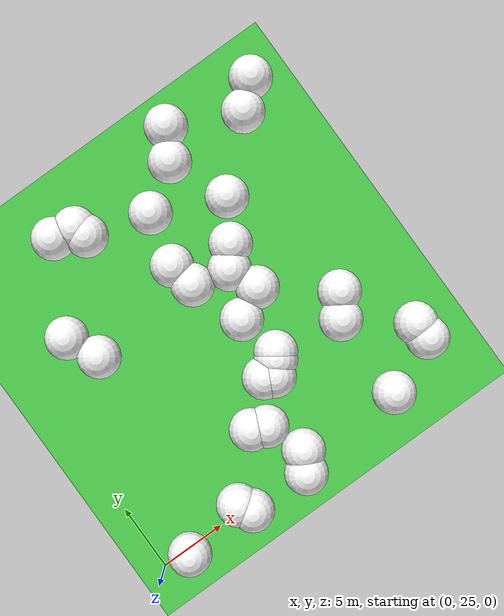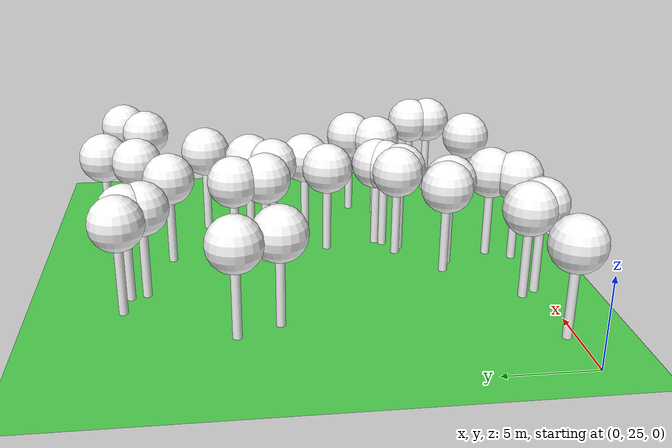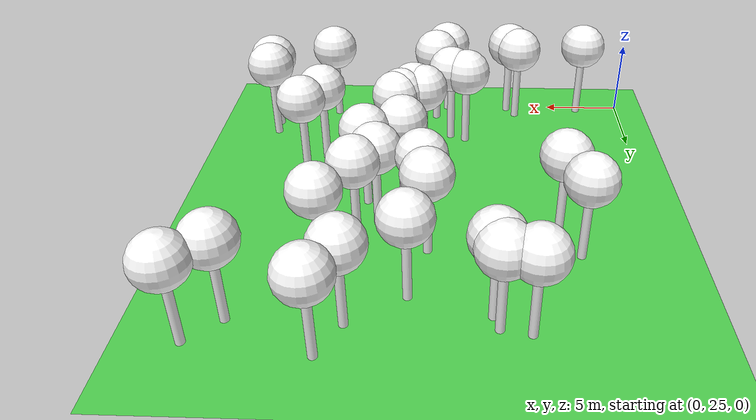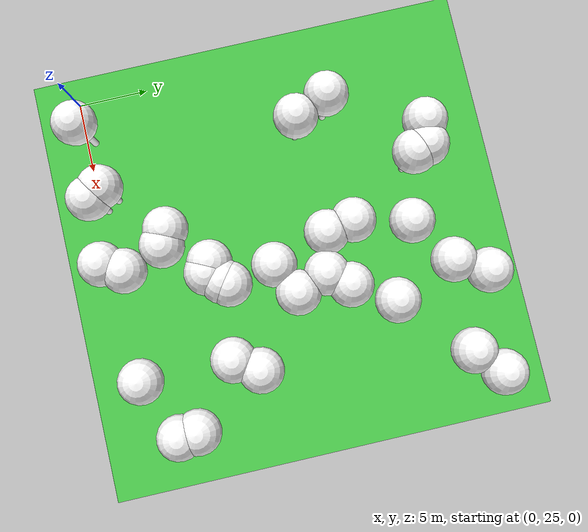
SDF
<sdf version="1.8">
 <world name="forest_world">
  <model name="tree_simple459">
   <static>1</static>
   <link name="link">
    <pose>0 0 0.1 0 -0 0</pose>
    <collision name="collision_trunk">
     <pose>0 0 2 0 -0 0</pose>
     <geometry><cylinder><radius>0.25</radius><length>4</length></cylinder></geometry>
    </collision>
    <collision name="collision_treetop">
     <pose>0 0 5.2 0 -0 0</pose>
     <geometry><sphere><radius>1.5</radius></sphere></geometry>
    </collision>
    <visual name="trunk_459">
     <pose>0 0 2 0 -0 0</pose>
     <geometry><cylinder><radius>0.25</radius><length>4</length></cylinder></geometry>
     <material>
      <ambient>0.5 0.5 0.5 1</ambient>
      <diffuse>1.0 1.0 1.0 1</diffuse>
      <specular>0.0 0.0 0.0 1</specular>
      <pbr>
       <metal>
        <albedo_map>file://textures/tree_simple_trunk.jpg</albedo_map>
        <metalness>0.0</metalness>
        <roughness>0.8</roughness>
       </metal>
      </pbr>
     </material>
    </visual>
    <visual name="treetop_459">
     <pose>0 0 5.2 0 -0 0</pose>
     <geometry><sphere><radius>1.5</radius></sphere></geometry>
     <material>
      <ambient>0.5 0.5 0.5 1</ambient>
      <diffuse>1.0 1.0 1.0 1</diffuse>
      <specular>0.0 0.0 0.0 1</specular>
      <pbr>
       <metal>
        <albedo_map>file://textures/tree_simple_treetop.jpg</albedo_map>
        <metalness>0.0</metalness>
        <roughness>0.9</roughness>
       </metal>
      </pbr>
     </material>
    </visual>
   </link>
   <pose>23.3051385383 47.6025012909 0 0 -0 0</pose>
  </model>
  <model name="tree_simple457">
   <static>1</static>
   <link name="link">
    <pose>0 0 0.1 0 -0 0</pose>
    <collision name="collision_trunk">
     <pose>0 0 2 0 -0 0</pose>
     <geometry><cylinder><radius>0.25</radius><length>4</length></cylinder></geometry>
    </collision>
    <collision name="collision_treetop">
     <pose>0 0 5.2 0 -0 0</pose>
     <geometry><sphere><radius>1.5</radius></sphere></geometry>
    </collision>
    <visual name="trunk_457">
     <pose>0 0 2 0 -0 0</pose>
     <geometry><cylinder><radius>0.25</radius><length>4</length></cylinder></geometry>
     <material>
      <ambient>0.5 0.5 0.5 1</ambient>
      <diffuse>1.0 1.0 1.0 1</diffuse>
      <specular>0.0 0.0 0.0 1</specular>
      <pbr>
       <metal>
        <albedo_map>file://textures/tree_simple_trunk.jpg</albedo_map>
        <metalness>0.0</metalness>
        <roughness>0.8</roughness>
       </metal>
      </pbr>
     </material>
    </visual>
    <visual name="treetop_457">
     <pose>0 0 5.2 0 -0 0</pose>
     <geometry><sphere><radius>1.5</radius></sphere></geometry>
     <material>
      <ambient>0.5 0.5 0.5 1</ambient>
      <diffuse>1.0 1.0 1.0 1</diffuse>
      <specular>0.0 0.0 0.0 1</specular>
      <pbr>
       <metal>
        <albedo_map>file://textures/tree_simple_treetop.jpg</albedo_map>
        <metalness>0.0</metalness>
        <roughness>0.9</roughness>
       </metal>
      </pbr>
     </material>
    </visual>
   </link>
   <pose>13.2865883098 26.7984826025 0 0 -0 0</pose>
  </model>
  <model name="tree_simple452">
   <static>1</static>
   <link name="link">
    <pose>0 0 0.1 0 -0 0</pose>
    <collision name="collision_trunk">
     <pose>0 0 2 0 -0 0</pose>
     <geometry><cylinder><radius>0.25</radius><length>4</length></cylinder></geometry>
    </collision>
    <collision name="collision_treetop">
     <pose>0 0 5.2 0 -0 0</pose>
     <geometry><sphere><radius>1.5</radius></sphere></geometry>
    </collision>
    <visual name="trunk_452">
     <pose>0 0 2 0 -0 0</pose>
     <geometry><cylinder><radius>0.25</radius><length>4</length></cylinder></geometry>
     <material>
      <ambient>0.5 0.5 0.5 1</ambient>
      <diffuse>1.0 1.0 1.0 1</diffuse>
      <specular>0.0 0.0 0.0 1</specular>
      <pbr>
       <metal>
        <albedo_map>file://textures/tree_simple_trunk.jpg</albedo_map>
        <metalness>0.0</metalness>
        <roughness>0.8</roughness>
       </metal>
      </pbr>
     </material>
    </visual>
    <visual name="treetop_452">
     <pose>0 0 5.2 0 -0 0</pose>
     <geometry><sphere><radius>1.5</radius></sphere></geometry>
     <material>
      <ambient>0.5 0.5 0.5 1</ambient>
      <diffuse>1.0 1.0 1.0 1</diffuse>
      <specular>0.0 0.0 0.0 1</specular>
      <pbr>
       <metal>
        <albedo_map>file://textures/tree_simple_treetop.jpg</albedo_map>
        <metalness>0.0</metalness>
        <roughness>0.9</roughness>
       </metal>
      </pbr>
     </material>
    </visual>
   </link>
   <pose>21.4881506157 34.0286005496 0 0 -0 0</pose>
  </model>
  <model name="tree_simple445">
   <static>1</static>
   <link name="link">
    <pose>0 0 0.1 0 -0 0</pose>
    <collision name="collision_trunk">
     <pose>0 0 2 0 -0 0</pose>
     <geometry><cylinder><radius>0.25</radius><length>4</length></cylinder></geometry>
    </collision>
    <collision name="collision_treetop">
     <pose>0 0 5.2 0 -0 0</pose>
     <geometry><sphere><radius>1.5</radius></sphere></geometry>
    </collision>
    <visual name="trunk_445">
     <pose>0 0 2 0 -0 0</pose>
     <geometry><cylinder><radius>0.25</radius><length>4</length></cylinder></geometry>
     <material>
      <ambient>0.5 0.5 0.5 1</ambient>
      <diffuse>1.0 1.0 1.0 1</diffuse>
      <specular>0.0 0.0 0.0 1</specular>
      <pbr>
       <metal>
        <albedo_map>file://textures/tree_simple_trunk.jpg</albedo_map>
        <metalness>0.0</metalness>
        <roughness>0.8</roughness>
       </metal>
      </pbr>
     </material>
    </visual>
    <visual name="treetop_445">
     <pose>0 0 5.2 0 -0 0</pose>
     <geometry><sphere><radius>1.5</radius></sphere></geometry>
     <material>
      <ambient>0.5 0.5 0.5 1</ambient>
      <diffuse>1.0 1.0 1.0 1</diffuse>
      <specular>0.0 0.0 0.0 1</specular>
      <pbr>
       <metal>
        <albedo_map>file://textures/tree_simple_treetop.jpg</albedo_map>
        <metalness>0.0</metalness>
        <roughness>0.9</roughness>
       </metal>
      </pbr>
     </material>
    </visual>
   </link>
   <pose>17.3330924595 47.7477611906 0 0 -0 0</pose>
  </model>
  <model name="tree_simple443">
   <static>1</static>
   <link name="link">
    <pose>0 0 0.1 0 -0 0</pose>
    <collision name="collision_trunk">
     <pose>0 0 2 0 -0 0</pose>
     <geometry><cylinder><radius>0.25</radius><length>4</length></cylinder></geometry>
    </collision>
    <collision name="collision_treetop">
     <pose>0 0 5.2 0 -0 0</pose>
     <geometry><sphere><radius>1.5</radius></sphere></geometry>
    </collision>
    <visual name="trunk_443">
     <pose>0 0 2 0 -0 0</pose>
     <geometry><cylinder><radius>0.25</radius><length>4</length></cylinder></geometry>
     <material>
      <ambient>0.5 0.5 0.5 1</ambient>
      <diffuse>1.0 1.0 1.0 1</diffuse>
      <specular>0.0 0.0 0.0 1</specular>
      <pbr>
       <metal>
        <albedo_map>file://textures/tree_simple_trunk.jpg</albedo_map>
        <metalness>0.0</metalness>
        <roughness>0.8</roughness>
       </metal>
      </pbr>
     </material>
    </visual>
    <visual name="treetop_443">
     <pose>0 0 5.2 0 -0 0</pose>
     <geometry><sphere><radius>1.5</radius></sphere></geometry>
     <material>
      <ambient>0.5 0.5 0.5 1</ambient>
      <diffuse>1.0 1.0 1.0 1</diffuse>
      <specular>0.0 0.0 0.0 1</specular>
      <pbr>
       <metal>
        <albedo_map>file://textures/tree_simple_treetop.jpg</albedo_map>
        <metalness>0.0</metalness>
        <roughness>0.9</roughness>
       </metal>
      </pbr>
     </material>
    </visual>
   </link>
   <pose>20.4518447393 32.4372971603 0 0 -0 0</pose>
  </model>
  <model name="tree_simple435">
   <static>1</static>
   <link name="link">
    <pose>0 0 0.1 0 -0 0</pose>
    <collision name="collision_trunk">
     <pose>0 0 2 0 -0 0</pose>
     <geometry><cylinder><radius>0.25</radius><length>4</length></cylinder></geometry>
    </collision>
    <collision name="collision_treetop">
     <pose>0 0 5.2 0 -0 0</pose>
     <geometry><sphere><radius>1.5</radius></sphere></geometry>
    </collision>
    <visual name="trunk_435">
     <pose>0 0 2 0 -0 0</pose>
     <geometry><cylinder><radius>0.25</radius><length>4</length></cylinder></geometry>
     <material>
      <ambient>0.5 0.5 0.5 1</ambient>
      <diffuse>1.0 1.0 1.0 1</diffuse>
      <specular>0.0 0.0 0.0 1</specular>
      <pbr>
       <metal>
        <albedo_map>file://textures/tree_simple_trunk.jpg</albedo_map>
        <metalness>0.0</metalness>
        <roughness>0.8</roughness>
       </metal>
      </pbr>
     </material>
    </visual>
    <visual name="treetop_435">
     <pose>0 0 5.2 0 -0 0</pose>
     <geometry><sphere><radius>1.5</radius></sphere></geometry>
     <material>
      <ambient>0.5 0.5 0.5 1</ambient>
      <diffuse>1.0 1.0 1.0 1</diffuse>
      <specular>0.0 0.0 0.0 1</specular>
      <pbr>
       <metal>
        <albedo_map>file://textures/tree_simple_treetop.jpg</albedo_map>
        <metalness>0.0</metalness>
        <roughness>0.9</roughness>
       </metal>
      </pbr>
     </material>
    </visual>
   </link>
   <pose>25.0532985597 49.162593115 0 0 -0 0</pose>
  </model>
  <model name="tree_simple419">
   <static>1</static>
   <link name="link">
    <pose>0 0 0.1 0 -0 0</pose>
    <collision name="collision_trunk">
     <pose>0 0 2 0 -0 0</pose>
     <geometry><cylinder><radius>0.25</radius><length>4</length></cylinder></geometry>
    </collision>
    <collision name="collision_treetop">
     <pose>0 0 5.2 0 -0 0</pose>
     <geometry><sphere><radius>1.5</radius></sphere></geometry>
    </collision>
    <visual name="trunk_419">
     <pose>0 0 2 0 -0 0</pose>
     <geometry><cylinder><radius>0.25</radius><length>4</length></cylinder></geometry>
     <material>
      <ambient>0.5 0.5 0.5 1</ambient>
      <diffuse>1.0 1.0 1.0 1</diffuse>
      <specular>0.0 0.0 0.0 1</specular>
      <pbr>
       <metal>
        <albedo_map>file://textures/tree_simple_trunk.jpg</albedo_map>
        <metalness>0.0</metalness>
        <roughness>0.8</roughness>
       </metal>
      </pbr>
     </material>
    </visual>
    <visual name="treetop_419">
     <pose>0 0 5.2 0 -0 0</pose>
     <geometry><sphere><radius>1.5</radius></sphere></geometry>
     <material>
      <ambient>0.5 0.5 0.5 1</ambient>
      <diffuse>1.0 1.0 1.0 1</diffuse>
      <specular>0.0 0.0 0.0 1</specular>
      <pbr>
       <metal>
        <albedo_map>file://textures/tree_simple_treetop.jpg</albedo_map>
        <metalness>0.0</metalness>
        <roughness>0.9</roughness>
       </metal>
      </pbr>
     </material>
    </visual>
   </link>
   <pose>15.0608261067 36.3391301174 0 0 -0 0</pose>
  </model>
  <model name="tree_simple413">
   <static>1</static>
   <link name="link">
    <pose>0 0 0.1 0 -0 0</pose>
    <collision name="collision_trunk">
     <pose>0 0 2 0 -0 0</pose>
     <geometry><cylinder><radius>0.25</radius><length>4</length></cylinder></geometry>
    </collision>
    <collision name="collision_treetop">
     <pose>0 0 5.2 0 -0 0</pose>
     <geometry><sphere><radius>1.5</radius></sphere></geometry>
    </collision>
    <visual name="trunk_413">
     <pose>0 0 2 0 -0 0</pose>
     <geometry><cylinder><radius>0.25</radius><length>4</length></cylinder></geometry>
     <material>
      <ambient>0.5 0.5 0.5 1</ambient>
      <diffuse>1.0 1.0 1.0 1</diffuse>
      <specular>0.0 0.0 0.0 1</specular>
      <pbr>
       <metal>
        <albedo_map>file://textures/tree_simple_trunk.jpg</albedo_map>
        <metalness>0.0</metalness>
        <roughness>0.8</roughness>
       </metal>
      </pbr>
     </material>
    </visual>
    <visual name="treetop_413">
     <pose>0 0 5.2 0 -0 0</pose>
     <geometry><sphere><radius>1.5</radius></sphere></geometry>
     <material>
      <ambient>0.5 0.5 0.5 1</ambient>
      <diffuse>1.0 1.0 1.0 1</diffuse>
      <specular>0.0 0.0 0.0 1</specular>
      <pbr>
       <metal>
        <albedo_map>file://textures/tree_simple_treetop.jpg</albedo_map>
        <metalness>0.0</metalness>
        <roughness>0.9</roughness>
       </metal>
      </pbr>
     </material>
    </visual>
   </link>
   <pose>4.79772995732 42.1907919742 0 0 -0 0</pose>
  </model>
  <model name="tree_simple405">
   <static>1</static>
   <link name="link">
    <pose>0 0 0.1 0 -0 0</pose>
    <collision name="collision_trunk">
     <pose>0 0 2 0 -0 0</pose>
     <geometry><cylinder><radius>0.25</radius><length>4</length></cylinder></geometry>
    </collision>
    <collision name="collision_treetop">
     <pose>0 0 5.2 0 -0 0</pose>
     <geometry><sphere><radius>1.5</radius></sphere></geometry>
    </collision>
    <visual name="trunk_405">
     <pose>0 0 2 0 -0 0</pose>
     <geometry><cylinder><radius>0.25</radius><length>4</length></cylinder></geometry>
     <material>
      <ambient>0.5 0.5 0.5 1</ambient>
      <diffuse>1.0 1.0 1.0 1</diffuse>
      <specular>0.0 0.0 0.0 1</specular>
      <pbr>
       <metal>
        <albedo_map>file://textures/tree_simple_trunk.jpg</albedo_map>
        <metalness>0.0</metalness>
        <roughness>0.8</roughness>
       </metal>
      </pbr>
     </material>
    </visual>
    <visual name="treetop_405">
     <pose>0 0 5.2 0 -0 0</pose>
     <geometry><sphere><radius>1.5</radius></sphere></geometry>
     <material>
      <ambient>0.5 0.5 0.5 1</ambient>
      <diffuse>1.0 1.0 1.0 1</diffuse>
      <specular>0.0 0.0 0.0 1</specular>
      <pbr>
       <metal>
        <albedo_map>file://textures/tree_simple_treetop.jpg</albedo_map>
        <metalness>0.0</metalness>
        <roughness>0.9</roughness>
       </metal>
      </pbr>
     </material>
    </visual>
   </link>
   <pose>13.9640568795 32.2793272532 0 0 -0 0</pose>
  </model>
  <model name="tree_simple401">
   <static>1</static>
   <link name="link">
    <pose>0 0 0.1 0 -0 0</pose>
    <collision name="collision_trunk">
     <pose>0 0 2 0 -0 0</pose>
     <geometry><cylinder><radius>0.25</radius><length>4</length></cylinder></geometry>
    </collision>
    <collision name="collision_treetop">
     <pose>0 0 5.2 0 -0 0</pose>
     <geometry><sphere><radius>1.5</radius></sphere></geometry>
    </collision>
    <visual name="trunk_401">
     <pose>0 0 2 0 -0 0</pose>
     <geometry><cylinder><radius>0.25</radius><length>4</length></cylinder></geometry>
     <material>
      <ambient>0.5 0.5 0.5 1</ambient>
      <diffuse>1.0 1.0 1.0 1</diffuse>
      <specular>0.0 0.0 0.0 1</specular>
      <pbr>
       <metal>
        <albedo_map>file://textures/tree_simple_trunk.jpg</albedo_map>
        <metalness>0.0</metalness>
        <roughness>0.8</roughness>
       </metal>
      </pbr>
     </material>
    </visual>
    <visual name="treetop_401">
     <pose>0 0 5.2 0 -0 0</pose>
     <geometry><sphere><radius>1.5</radius></sphere></geometry>
     <material>
      <ambient>0.5 0.5 0.5 1</ambient>
      <diffuse>1.0 1.0 1.0 1</diffuse>
      <specular>0.0 0.0 0.0 1</specular>
      <pbr>
       <metal>
        <albedo_map>file://textures/tree_simple_treetop.jpg</albedo_map>
        <metalness>0.0</metalness>
        <roughness>0.9</roughness>
       </metal>
      </pbr>
     </material>
    </visual>
   </link>
   <pose>18.5119614972 49.8300347258 0 0 -0 0</pose>
  </model>
  <model name="tree_simple381">
   <static>1</static>
   <link name="link">
    <pose>0 0 0.1 0 -0 0</pose>
    <collision name="collision_trunk">
     <pose>0 0 2 0 -0 0</pose>
     <geometry><cylinder><radius>0.25</radius><length>4</length></cylinder></geometry>
    </collision>
    <collision name="collision_treetop">
     <pose>0 0 5.2 0 -0 0</pose>
     <geometry><sphere><radius>1.5</radius></sphere></geometry>
    </collision>
    <visual name="trunk_381">
     <pose>0 0 2 0 -0 0</pose>
     <geometry><cylinder><radius>0.25</radius><length>4</length></cylinder></geometry>
     <material>
      <ambient>0.5 0.5 0.5 1</ambient>
      <diffuse>1.0 1.0 1.0 1</diffuse>
      <specular>0.0 0.0 0.0 1</specular>
      <pbr>
       <metal>
        <albedo_map>file://textures/tree_simple_trunk.jpg</albedo_map>
        <metalness>0.0</metalness>
        <roughness>0.8</roughness>
       </metal>
      </pbr>
     </material>
    </visual>
    <visual name="treetop_381">
     <pose>0 0 5.2 0 -0 0</pose>
     <geometry><sphere><radius>1.5</radius></sphere></geometry>
     <material>
      <ambient>0.5 0.5 0.5 1</ambient>
      <diffuse>1.0 1.0 1.0 1</diffuse>
      <specular>0.0 0.0 0.0 1</specular>
      <pbr>
       <metal>
        <albedo_map>file://textures/tree_simple_treetop.jpg</albedo_map>
        <metalness>0.0</metalness>
        <roughness>0.9</roughness>
       </metal>
      </pbr>
     </material>
    </visual>
   </link>
   <pose>14.598493672 31.9609585056 0 0 -0 0</pose>
  </model>
  <model name="tree_simple372">
   <static>1</static>
   <link name="link">
    <pose>0 0 0.1 0 -0 0</pose>
    <collision name="collision_trunk">
     <pose>0 0 2 0 -0 0</pose>
     <geometry><cylinder><radius>0.25</radius><length>4</length></cylinder></geometry>
    </collision>
    <collision name="collision_treetop">
     <pose>0 0 5.2 0 -0 0</pose>
     <geometry><sphere><radius>1.5</radius></sphere></geometry>
    </collision>
    <visual name="trunk_372">
     <pose>0 0 2 0 -0 0</pose>
     <geometry><cylinder><radius>0.25</radius><length>4</length></cylinder></geometry>
     <material>
      <ambient>0.5 0.5 0.5 1</ambient>
      <diffuse>1.0 1.0 1.0 1</diffuse>
      <specular>0.0 0.0 0.0 1</specular>
      <pbr>
       <metal>
        <albedo_map>file://textures/tree_simple_trunk.jpg</albedo_map>
        <metalness>0.0</metalness>
        <roughness>0.8</roughness>
       </metal>
      </pbr>
     </material>
    </visual>
    <visual name="treetop_372">
     <pose>0 0 5.2 0 -0 0</pose>
     <geometry><sphere><radius>1.5</radius></sphere></geometry>
     <material>
      <ambient>0.5 0.5 0.5 1</ambient>
      <diffuse>1.0 1.0 1.0 1</diffuse>
      <specular>0.0 0.0 0.0 1</specular>
      <pbr>
       <metal>
        <albedo_map>file://textures/tree_simple_treetop.jpg</albedo_map>
        <metalness>0.0</metalness>
        <roughness>0.9</roughness>
       </metal>
      </pbr>
     </material>
    </visual>
   </link>
   <pose>19.0807104519 43.6051965294 0 0 -0 0</pose>
  </model>
  <model name="tree_simple367">
   <static>1</static>
   <link name="link">
    <pose>0 0 0.1 0 -0 0</pose>
    <collision name="collision_trunk">
     <pose>0 0 2 0 -0 0</pose>
     <geometry><cylinder><radius>0.25</radius><length>4</length></cylinder></geometry>
    </collision>
    <collision name="collision_treetop">
     <pose>0 0 5.2 0 -0 0</pose>
     <geometry><sphere><radius>1.5</radius></sphere></geometry>
    </collision>
    <visual name="trunk_367">
     <pose>0 0 2 0 -0 0</pose>
     <geometry><cylinder><radius>0.25</radius><length>4</length></cylinder></geometry>
     <material>
      <ambient>0.5 0.5 0.5 1</ambient>
      <diffuse>1.0 1.0 1.0 1</diffuse>
      <specular>0.0 0.0 0.0 1</specular>
      <pbr>
       <metal>
        <albedo_map>file://textures/tree_simple_trunk.jpg</albedo_map>
        <metalness>0.0</metalness>
        <roughness>0.8</roughness>
       </metal>
      </pbr>
     </material>
    </visual>
    <visual name="treetop_367">
     <pose>0 0 5.2 0 -0 0</pose>
     <geometry><sphere><radius>1.5</radius></sphere></geometry>
     <material>
      <ambient>0.5 0.5 0.5 1</ambient>
      <diffuse>1.0 1.0 1.0 1</diffuse>
      <specular>0.0 0.0 0.0 1</specular>
      <pbr>
       <metal>
        <albedo_map>file://textures/tree_simple_treetop.jpg</albedo_map>
        <metalness>0.0</metalness>
        <roughness>0.9</roughness>
       </metal>
      </pbr>
     </material>
    </visual>
   </link>
   <pose>14.2659299001 45.7179827091 0 0 -0 0</pose>
  </model>
  <model name="tree_simple365">
   <static>1</static>
   <link name="link">
    <pose>0 0 0.1 0 -0 0</pose>
    <collision name="collision_trunk">
     <pose>0 0 2 0 -0 0</pose>
     <geometry><cylinder><radius>0.25</radius><length>4</length></cylinder></geometry>
    </collision>
    <collision name="collision_treetop">
     <pose>0 0 5.2 0 -0 0</pose>
     <geometry><sphere><radius>1.5</radius></sphere></geometry>
    </collision>
    <visual name="trunk_365">
     <pose>0 0 2 0 -0 0</pose>
     <geometry><cylinder><radius>0.25</radius><length>4</length></cylinder></geometry>
     <material>
      <ambient>0.5 0.5 0.5 1</ambient>
      <diffuse>1.0 1.0 1.0 1</diffuse>
      <specular>0.0 0.0 0.0 1</specular>
      <pbr>
       <metal>
        <albedo_map>file://textures/tree_simple_trunk.jpg</albedo_map>
        <metalness>0.0</metalness>
        <roughness>0.8</roughness>
       </metal>
      </pbr>
     </material>
    </visual>
    <visual name="treetop_365">
     <pose>0 0 5.2 0 -0 0</pose>
     <geometry><sphere><radius>1.5</radius></sphere></geometry>
     <material>
      <ambient>0.5 0.5 0.5 1</ambient>
      <diffuse>1.0 1.0 1.0 1</diffuse>
      <specular>0.0 0.0 0.0 1</specular>
      <pbr>
       <metal>
        <albedo_map>file://textures/tree_simple_treetop.jpg</albedo_map>
        <metalness>0.0</metalness>
        <roughness>0.9</roughness>
       </metal>
      </pbr>
     </material>
    </visual>
   </link>
   <pose>7.96669325113 48.1339153876 0 0 -0 0</pose>
  </model>
  <model name="tree_simple340">
   <static>1</static>
   <link name="link">
    <pose>0 0 0.1 0 -0 0</pose>
    <collision name="collision_trunk">
     <pose>0 0 2 0 -0 0</pose>
     <geometry><cylinder><radius>0.25</radius><length>4</length></cylinder></geometry>
    </collision>
    <collision name="collision_treetop">
     <pose>0 0 5.2 0 -0 0</pose>
     <geometry><sphere><radius>1.5</radius></sphere></geometry>
    </collision>
    <visual name="trunk_340">
     <pose>0 0 2 0 -0 0</pose>
     <geometry><cylinder><radius>0.25</radius><length>4</length></cylinder></geometry>
     <material>
      <ambient>0.5 0.5 0.5 1</ambient>
      <diffuse>1.0 1.0 1.0 1</diffuse>
      <specular>0.0 0.0 0.0 1</specular>
      <pbr>
       <metal>
        <albedo_map>file://textures/tree_simple_trunk.jpg</albedo_map>
        <metalness>0.0</metalness>
        <roughness>0.8</roughness>
       </metal>
      </pbr>
     </material>
    </visual>
    <visual name="treetop_340">
     <pose>0 0 5.2 0 -0 0</pose>
     <geometry><sphere><radius>1.5</radius></sphere></geometry>
     <material>
      <ambient>0.5 0.5 0.5 1</ambient>
      <diffuse>1.0 1.0 1.0 1</diffuse>
      <specular>0.0 0.0 0.0 1</specular>
      <pbr>
       <metal>
        <albedo_map>file://textures/tree_simple_treetop.jpg</albedo_map>
        <metalness>0.0</metalness>
        <roughness>0.9</roughness>
       </metal>
      </pbr>
     </material>
    </visual>
   </link>
   <pose>15.6359324045 33.2415832038 0 0 -0 0</pose>
  </model>
  <model name="tree_simple339">
   <static>1</static>
   <link name="link">
    <pose>0 0 0.1 0 -0 0</pose>
    <collision name="collision_trunk">
     <pose>0 0 2 0 -0 0</pose>
     <geometry><cylinder><radius>0.25</radius><length>4</length></cylinder></geometry>
    </collision>
    <collision name="collision_treetop">
     <pose>0 0 5.2 0 -0 0</pose>
     <geometry><sphere><radius>1.5</radius></sphere></geometry>
    </collision>
    <visual name="trunk_339">
     <pose>0 0 2 0 -0 0</pose>
     <geometry><cylinder><radius>0.25</radius><length>4</length></cylinder></geometry>
     <material>
      <ambient>0.5 0.5 0.5 1</ambient>
      <diffuse>1.0 1.0 1.0 1</diffuse>
      <specular>0.0 0.0 0.0 1</specular>
      <pbr>
       <metal>
        <albedo_map>file://textures/tree_simple_trunk.jpg</albedo_map>
        <metalness>0.0</metalness>
        <roughness>0.8</roughness>
       </metal>
      </pbr>
     </material>
    </visual>
    <visual name="treetop_339">
     <pose>0 0 5.2 0 -0 0</pose>
     <geometry><sphere><radius>1.5</radius></sphere></geometry>
     <material>
      <ambient>0.5 0.5 0.5 1</ambient>
      <diffuse>1.0 1.0 1.0 1</diffuse>
      <specular>0.0 0.0 0.0 1</specular>
      <pbr>
       <metal>
        <albedo_map>file://textures/tree_simple_treetop.jpg</albedo_map>
        <metalness>0.0</metalness>
        <roughness>0.9</roughness>
       </metal>
      </pbr>
     </material>
    </visual>
   </link>
   <pose>8.14193712957 25.5166560065 0 0 -0 0</pose>
  </model>
  <model name="tree_simple325">
   <static>1</static>
   <link name="link">
    <pose>0 0 0.1 0 -0 0</pose>
    <collision name="collision_trunk">
     <pose>0 0 2 0 -0 0</pose>
     <geometry><cylinder><radius>0.25</radius><length>4</length></cylinder></geometry>
    </collision>
    <collision name="collision_treetop">
     <pose>0 0 5.2 0 -0 0</pose>
     <geometry><sphere><radius>1.5</radius></sphere></geometry>
    </collision>
    <visual name="trunk_325">
     <pose>0 0 2 0 -0 0</pose>
     <geometry><cylinder><radius>0.25</radius><length>4</length></cylinder></geometry>
     <material>
      <ambient>0.5 0.5 0.5 1</ambient>
      <diffuse>1.0 1.0 1.0 1</diffuse>
      <specular>0.0 0.0 0.0 1</specular>
      <pbr>
       <metal>
        <albedo_map>file://textures/tree_simple_trunk.jpg</albedo_map>
        <metalness>0.0</metalness>
        <roughness>0.8</roughness>
       </metal>
      </pbr>
     </material>
    </visual>
    <visual name="treetop_325">
     <pose>0 0 5.2 0 -0 0</pose>
     <geometry><sphere><radius>1.5</radius></sphere></geometry>
     <material>
      <ambient>0.5 0.5 0.5 1</ambient>
      <diffuse>1.0 1.0 1.0 1</diffuse>
      <specular>0.0 0.0 0.0 1</specular>
      <pbr>
       <metal>
        <albedo_map>file://textures/tree_simple_treetop.jpg</albedo_map>
        <metalness>0.0</metalness>
        <roughness>0.9</roughness>
       </metal>
      </pbr>
     </material>
    </visual>
   </link>
   <pose>16.3512762839 39.5353955834 0 0 -0 0</pose>
  </model>
  <model name="tree_simple320">
   <static>1</static>
   <link name="link">
    <pose>0 0 0.1 0 -0 0</pose>
    <collision name="collision_trunk">
     <pose>0 0 2 0 -0 0</pose>
     <geometry><cylinder><radius>0.25</radius><length>4</length></cylinder></geometry>
    </collision>
    <collision name="collision_treetop">
     <pose>0 0 5.2 0 -0 0</pose>
     <geometry><sphere><radius>1.5</radius></sphere></geometry>
    </collision>
    <visual name="trunk_320">
     <pose>0 0 2 0 -0 0</pose>
     <geometry><cylinder><radius>0.25</radius><length>4</length></cylinder></geometry>
     <material>
      <ambient>0.5 0.5 0.5 1</ambient>
      <diffuse>1.0 1.0 1.0 1</diffuse>
      <specular>0.0 0.0 0.0 1</specular>
      <pbr>
       <metal>
        <albedo_map>file://textures/tree_simple_trunk.jpg</albedo_map>
        <metalness>0.0</metalness>
        <roughness>0.8</roughness>
       </metal>
      </pbr>
     </material>
    </visual>
    <visual name="treetop_320">
     <pose>0 0 5.2 0 -0 0</pose>
     <geometry><sphere><radius>1.5</radius></sphere></geometry>
     <material>
      <ambient>0.5 0.5 0.5 1</ambient>
      <diffuse>1.0 1.0 1.0 1</diffuse>
      <specular>0.0 0.0 0.0 1</specular>
      <pbr>
       <metal>
        <albedo_map>file://textures/tree_simple_treetop.jpg</albedo_map>
        <metalness>0.0</metalness>
        <roughness>0.9</roughness>
       </metal>
      </pbr>
     </material>
    </visual>
   </link>
   <pose>17.4267796311 40.9028236297 0 0 -0 0</pose>
  </model>
  <model name="tree_simple295">
   <static>1</static>
   <link name="link">
    <pose>0 0 0.1 0 -0 0</pose>
    <collision name="collision_trunk">
     <pose>0 0 2 0 -0 0</pose>
     <geometry><cylinder><radius>0.25</radius><length>4</length></cylinder></geometry>
    </collision>
    <collision name="collision_treetop">
     <pose>0 0 5.2 0 -0 0</pose>
     <geometry><sphere><radius>1.5</radius></sphere></geometry>
    </collision>
    <visual name="trunk_295">
     <pose>0 0 2 0 -0 0</pose>
     <geometry><cylinder><radius>0.25</radius><length>4</length></cylinder></geometry>
     <material>
      <ambient>0.5 0.5 0.5 1</ambient>
      <diffuse>1.0 1.0 1.0 1</diffuse>
      <specular>0.0 0.0 0.0 1</specular>
      <pbr>
       <metal>
        <albedo_map>file://textures/tree_simple_trunk.jpg</albedo_map>
        <metalness>0.0</metalness>
        <roughness>0.8</roughness>
       </metal>
      </pbr>
     </material>
    </visual>
    <visual name="treetop_295">
     <pose>0 0 5.2 0 -0 0</pose>
     <geometry><sphere><radius>1.5</radius></sphere></geometry>
     <material>
      <ambient>0.5 0.5 0.5 1</ambient>
      <diffuse>1.0 1.0 1.0 1</diffuse>
      <specular>0.0 0.0 0.0 1</specular>
      <pbr>
       <metal>
        <albedo_map>file://textures/tree_simple_treetop.jpg</albedo_map>
        <metalness>0.0</metalness>
        <roughness>0.9</roughness>
       </metal>
      </pbr>
     </material>
    </visual>
   </link>
   <pose>24.4545500201 28.0657933919 0 0 -0 0</pose>
  </model>
  <model name="tree_simple287">
   <static>1</static>
   <link name="link">
    <pose>0 0 0.1 0 -0 0</pose>
    <collision name="collision_trunk">
     <pose>0 0 2 0 -0 0</pose>
     <geometry><cylinder><radius>0.25</radius><length>4</length></cylinder></geometry>
    </collision>
    <collision name="collision_treetop">
     <pose>0 0 5.2 0 -0 0</pose>
     <geometry><sphere><radius>1.5</radius></sphere></geometry>
    </collision>
    <visual name="trunk_287">
     <pose>0 0 2 0 -0 0</pose>
     <geometry><cylinder><radius>0.25</radius><length>4</length></cylinder></geometry>
     <material>
      <ambient>0.5 0.5 0.5 1</ambient>
      <diffuse>1.0 1.0 1.0 1</diffuse>
      <specular>0.0 0.0 0.0 1</specular>
      <pbr>
       <metal>
        <albedo_map>file://textures/tree_simple_trunk.jpg</albedo_map>
        <metalness>0.0</metalness>
        <roughness>0.8</roughness>
       </metal>
      </pbr>
     </material>
    </visual>
    <visual name="treetop_287">
     <pose>0 0 5.2 0 -0 0</pose>
     <geometry><sphere><radius>1.5</radius></sphere></geometry>
     <material>
      <ambient>0.5 0.5 0.5 1</ambient>
      <diffuse>1.0 1.0 1.0 1</diffuse>
      <specular>0.0 0.0 0.0 1</specular>
      <pbr>
       <metal>
        <albedo_map>file://textures/tree_simple_treetop.jpg</albedo_map>
        <metalness>0.0</metalness>
        <roughness>0.9</roughness>
       </metal>
      </pbr>
     </material>
    </visual>
   </link>
   <pose>5.81960290033 39.8953620518 0 0 -0 0</pose>
  </model>
  <model name="tree_simple275">
   <static>1</static>
   <link name="link">
    <pose>0 0 0.1 0 -0 0</pose>
    <collision name="collision_trunk">
     <pose>0 0 2 0 -0 0</pose>
     <geometry><cylinder><radius>0.25</radius><length>4</length></cylinder></geometry>
    </collision>
    <collision name="collision_treetop">
     <pose>0 0 5.2 0 -0 0</pose>
     <geometry><sphere><radius>1.5</radius></sphere></geometry>
    </collision>
    <visual name="trunk_275">
     <pose>0 0 2 0 -0 0</pose>
     <geometry><cylinder><radius>0.25</radius><length>4</length></cylinder></geometry>
     <material>
      <ambient>0.5 0.5 0.5 1</ambient>
      <diffuse>1.0 1.0 1.0 1</diffuse>
      <specular>0.0 0.0 0.0 1</specular>
      <pbr>
       <metal>
        <albedo_map>file://textures/tree_simple_trunk.jpg</albedo_map>
        <metalness>0.0</metalness>
        <roughness>0.8</roughness>
       </metal>
      </pbr>
     </material>
    </visual>
    <visual name="treetop_275">
     <pose>0 0 5.2 0 -0 0</pose>
     <geometry><sphere><radius>1.5</radius></sphere></geometry>
     <material>
      <ambient>0.5 0.5 0.5 1</ambient>
      <diffuse>1.0 1.0 1.0 1</diffuse>
      <specular>0.0 0.0 0.0 1</specular>
      <pbr>
       <metal>
        <albedo_map>file://textures/tree_simple_treetop.jpg</albedo_map>
        <metalness>0.0</metalness>
        <roughness>0.9</roughness>
       </metal>
      </pbr>
     </material>
    </visual>
   </link>
   <pose>11.2194181464 29.9629539421 0 0 -0 0</pose>
  </model>
  <model name="tree_simple260">
   <static>1</static>
   <link name="link">
    <pose>0 0 0.1 0 -0 0</pose>
    <collision name="collision_trunk">
     <pose>0 0 2 0 -0 0</pose>
     <geometry><cylinder><radius>0.25</radius><length>4</length></cylinder></geometry>
    </collision>
    <collision name="collision_treetop">
     <pose>0 0 5.2 0 -0 0</pose>
     <geometry><sphere><radius>1.5</radius></sphere></geometry>
    </collision>
    <visual name="trunk_260">
     <pose>0 0 2 0 -0 0</pose>
     <geometry><cylinder><radius>0.25</radius><length>4</length></cylinder></geometry>
     <material>
      <ambient>0.5 0.5 0.5 1</ambient>
      <diffuse>1.0 1.0 1.0 1</diffuse>
      <specular>0.0 0.0 0.0 1</specular>
      <pbr>
       <metal>
        <albedo_map>file://textures/tree_simple_trunk.jpg</albedo_map>
        <metalness>0.0</metalness>
        <roughness>0.8</roughness>
       </metal>
      </pbr>
     </material>
    </visual>
    <visual name="treetop_260">
     <pose>0 0 5.2 0 -0 0</pose>
     <geometry><sphere><radius>1.5</radius></sphere></geometry>
     <material>
      <ambient>0.5 0.5 0.5 1</ambient>
      <diffuse>1.0 1.0 1.0 1</diffuse>
      <specular>0.0 0.0 0.0 1</specular>
      <pbr>
       <metal>
        <albedo_map>file://textures/tree_simple_treetop.jpg</albedo_map>
        <metalness>0.0</metalness>
        <roughness>0.9</roughness>
       </metal>
      </pbr>
     </material>
    </visual>
   </link>
   <pose>20.4747246255 26.3739745209 0 0 -0 0</pose>
  </model>
  <model name="tree_simple258">
   <static>1</static>
   <link name="link">
    <pose>0 0 0.1 0 -0 0</pose>
    <collision name="collision_trunk">
     <pose>0 0 2 0 -0 0</pose>
     <geometry><cylinder><radius>0.25</radius><length>4</length></cylinder></geometry>
    </collision>
    <collision name="collision_treetop">
     <pose>0 0 5.2 0 -0 0</pose>
     <geometry><sphere><radius>1.5</radius></sphere></geometry>
    </collision>
    <visual name="trunk_258">
     <pose>0 0 2 0 -0 0</pose>
     <geometry><cylinder><radius>0.25</radius><length>4</length></cylinder></geometry>
     <material>
      <ambient>0.5 0.5 0.5 1</ambient>
      <diffuse>1.0 1.0 1.0 1</diffuse>
      <specular>0.0 0.0 0.0 1</specular>
      <pbr>
       <metal>
        <albedo_map>file://textures/tree_simple_trunk.jpg</albedo_map>
        <metalness>0.0</metalness>
        <roughness>0.8</roughness>
       </metal>
      </pbr>
     </material>
    </visual>
    <visual name="treetop_258">
     <pose>0 0 5.2 0 -0 0</pose>
     <geometry><sphere><radius>1.5</radius></sphere></geometry>
     <material>
      <ambient>0.5 0.5 0.5 1</ambient>
      <diffuse>1.0 1.0 1.0 1</diffuse>
      <specular>0.0 0.0 0.0 1</specular>
      <pbr>
       <metal>
        <albedo_map>file://textures/tree_simple_treetop.jpg</albedo_map>
        <metalness>0.0</metalness>
        <roughness>0.9</roughness>
       </metal>
      </pbr>
     </material>
    </visual>
   </link>
   <pose>24.3825797899 29.2966391115 0 0 -0 0</pose>
  </model>
  <model name="tree_simple254">
   <static>1</static>
   <link name="link">
    <pose>0 0 0.1 0 -0 0</pose>
    <collision name="collision_trunk">
     <pose>0 0 2 0 -0 0</pose>
     <geometry><cylinder><radius>0.25</radius><length>4</length></cylinder></geometry>
    </collision>
    <collision name="collision_treetop">
     <pose>0 0 5.2 0 -0 0</pose>
     <geometry><sphere><radius>1.5</radius></sphere></geometry>
    </collision>
    <visual name="trunk_254">
     <pose>0 0 2 0 -0 0</pose>
     <geometry><cylinder><radius>0.25</radius><length>4</length></cylinder></geometry>
     <material>
      <ambient>0.5 0.5 0.5 1</ambient>
      <diffuse>1.0 1.0 1.0 1</diffuse>
      <specular>0.0 0.0 0.0 1</specular>
      <pbr>
       <metal>
        <albedo_map>file://textures/tree_simple_trunk.jpg</albedo_map>
        <metalness>0.0</metalness>
        <roughness>0.8</roughness>
       </metal>
      </pbr>
     </material>
    </visual>
    <visual name="treetop_254">
     <pose>0 0 5.2 0 -0 0</pose>
     <geometry><sphere><radius>1.5</radius></sphere></geometry>
     <material>
      <ambient>0.5 0.5 0.5 1</ambient>
      <diffuse>1.0 1.0 1.0 1</diffuse>
      <specular>0.0 0.0 0.0 1</specular>
      <pbr>
       <metal>
        <albedo_map>file://textures/tree_simple_treetop.jpg</albedo_map>
        <metalness>0.0</metalness>
        <roughness>0.9</roughness>
       </metal>
      </pbr>
     </material>
    </visual>
   </link>
   <pose>13.3684370787 41.9999258399 0 0 -0 0</pose>
  </model>
  <model name="tree_simple229">
   <static>1</static>
   <link name="link">
    <pose>0 0 0.1 0 -0 0</pose>
    <collision name="collision_trunk">
     <pose>0 0 2 0 -0 0</pose>
     <geometry><cylinder><radius>0.25</radius><length>4</length></cylinder></geometry>
    </collision>
    <collision name="collision_treetop">
     <pose>0 0 5.2 0 -0 0</pose>
     <geometry><sphere><radius>1.5</radius></sphere></geometry>
    </collision>
    <visual name="trunk_229">
     <pose>0 0 2 0 -0 0</pose>
     <geometry><cylinder><radius>0.25</radius><length>4</length></cylinder></geometry>
     <material>
      <ambient>0.5 0.5 0.5 1</ambient>
      <diffuse>1.0 1.0 1.0 1</diffuse>
      <specular>0.0 0.0 0.0 1</specular>
      <pbr>
       <metal>
        <albedo_map>file://textures/tree_simple_trunk.jpg</albedo_map>
        <metalness>0.0</metalness>
        <roughness>0.8</roughness>
       </metal>
      </pbr>
     </material>
    </visual>
    <visual name="treetop_229">
     <pose>0 0 5.2 0 -0 0</pose>
     <geometry><sphere><radius>1.5</radius></sphere></geometry>
     <material>
      <ambient>0.5 0.5 0.5 1</ambient>
      <diffuse>1.0 1.0 1.0 1</diffuse>
      <specular>0.0 0.0 0.0 1</specular>
      <pbr>
       <metal>
        <albedo_map>file://textures/tree_simple_treetop.jpg</albedo_map>
        <metalness>0.0</metalness>
        <roughness>0.9</roughness>
       </metal>
      </pbr>
     </material>
    </visual>
   </link>
   <pose>17.1703693381 37.4765229217 0 0 -0 0</pose>
  </model>
  <model name="tree_simple196">
   <static>1</static>
   <link name="link">
    <pose>0 0 0.1 0 -0 0</pose>
    <collision name="collision_trunk">
     <pose>0 0 2 0 -0 0</pose>
     <geometry><cylinder><radius>0.25</radius><length>4</length></cylinder></geometry>
    </collision>
    <collision name="collision_treetop">
     <pose>0 0 5.2 0 -0 0</pose>
     <geometry><sphere><radius>1.5</radius></sphere></geometry>
    </collision>
    <visual name="trunk_196">
     <pose>0 0 2 0 -0 0</pose>
     <geometry><cylinder><radius>0.25</radius><length>4</length></cylinder></geometry>
     <material>
      <ambient>0.5 0.5 0.5 1</ambient>
      <diffuse>1.0 1.0 1.0 1</diffuse>
      <specular>0.0 0.0 0.0 1</specular>
      <pbr>
       <metal>
        <albedo_map>file://textures/tree_simple_trunk.jpg</albedo_map>
        <metalness>0.0</metalness>
        <roughness>0.8</roughness>
       </metal>
      </pbr>
     </material>
    </visual>
    <visual name="treetop_196">
     <pose>0 0 5.2 0 -0 0</pose>
     <geometry><sphere><radius>1.5</radius></sphere></geometry>
     <material>
      <ambient>0.5 0.5 0.5 1</ambient>
      <diffuse>1.0 1.0 1.0 1</diffuse>
      <specular>0.0 0.0 0.0 1</specular>
      <pbr>
       <metal>
        <albedo_map>file://textures/tree_simple_treetop.jpg</albedo_map>
        <metalness>0.0</metalness>
        <roughness>0.9</roughness>
       </metal>
      </pbr>
     </material>
    </visual>
   </link>
   <pose>13.7422198568 40.1413468751 0 0 -0 0</pose>
  </model>
  <model name="tree_simple189">
   <static>1</static>
   <link name="link">
    <pose>0 0 0.1 0 -0 0</pose>
    <collision name="collision_trunk">
     <pose>0 0 2 0 -0 0</pose>
     <geometry><cylinder><radius>0.25</radius><length>4</length></cylinder></geometry>
    </collision>
    <collision name="collision_treetop">
     <pose>0 0 5.2 0 -0 0</pose>
     <geometry><sphere><radius>1.5</radius></sphere></geometry>
    </collision>
    <visual name="trunk_189">
     <pose>0 0 2 0 -0 0</pose>
     <geometry><cylinder><radius>0.25</radius><length>4</length></cylinder></geometry>
     <material>
      <ambient>0.5 0.5 0.5 1</ambient>
      <diffuse>1.0 1.0 1.0 1</diffuse>
      <specular>0.0 0.0 0.0 1</specular>
      <pbr>
       <metal>
        <albedo_map>file://textures/tree_simple_trunk.jpg</albedo_map>
        <metalness>0.0</metalness>
        <roughness>0.8</roughness>
       </metal>
      </pbr>
     </material>
    </visual>
    <visual name="treetop_189">
     <pose>0 0 5.2 0 -0 0</pose>
     <geometry><sphere><radius>1.5</radius></sphere></geometry>
     <material>
      <ambient>0.5 0.5 0.5 1</ambient>
      <diffuse>1.0 1.0 1.0 1</diffuse>
      <specular>0.0 0.0 0.0 1</specular>
      <pbr>
       <metal>
        <albedo_map>file://textures/tree_simple_treetop.jpg</albedo_map>
        <metalness>0.0</metalness>
        <roughness>0.9</roughness>
       </metal>
      </pbr>
     </material>
    </visual>
   </link>
   <pose>7.56705231804 26.3742867244 0 0 -0 0</pose>
  </model>
  <model name="tree_simple170">
   <static>1</static>
   <link name="link">
    <pose>0 0 0.1 0 -0 0</pose>
    <collision name="collision_trunk">
     <pose>0 0 2 0 -0 0</pose>
     <geometry><cylinder><radius>0.25</radius><length>4</length></cylinder></geometry>
    </collision>
    <collision name="collision_treetop">
     <pose>0 0 5.2 0 -0 0</pose>
     <geometry><sphere><radius>1.5</radius></sphere></geometry>
    </collision>
    <visual name="trunk_170">
     <pose>0 0 2 0 -0 0</pose>
     <geometry><cylinder><radius>0.25</radius><length>4</length></cylinder></geometry>
     <material>
      <ambient>0.5 0.5 0.5 1</ambient>
      <diffuse>1.0 1.0 1.0 1</diffuse>
      <specular>0.0 0.0 0.0 1</specular>
      <pbr>
       <metal>
        <albedo_map>file://textures/tree_simple_trunk.jpg</albedo_map>
        <metalness>0.0</metalness>
        <roughness>0.8</roughness>
       </metal>
      </pbr>
     </material>
    </visual>
    <visual name="treetop_170">
     <pose>0 0 5.2 0 -0 0</pose>
     <geometry><sphere><radius>1.5</radius></sphere></geometry>
     <material>
      <ambient>0.5 0.5 0.5 1</ambient>
      <diffuse>1.0 1.0 1.0 1</diffuse>
      <specular>0.0 0.0 0.0 1</specular>
      <pbr>
       <metal>
        <albedo_map>file://textures/tree_simple_treetop.jpg</albedo_map>
        <metalness>0.0</metalness>
        <roughness>0.9</roughness>
       </metal>
      </pbr>
     </material>
    </visual>
   </link>
   <pose>15.3427930971 32.8273761874 0 0 -0 0</pose>
  </model>
  <model name="tree_simple148">
   <static>1</static>
   <link name="link">
    <pose>0 0 0.1 0 -0 0</pose>
    <collision name="collision_trunk">
     <pose>0 0 2 0 -0 0</pose>
     <geometry><cylinder><radius>0.25</radius><length>4</length></cylinder></geometry>
    </collision>
    <collision name="collision_treetop">
     <pose>0 0 5.2 0 -0 0</pose>
     <geometry><sphere><radius>1.5</radius></sphere></geometry>
    </collision>
    <visual name="trunk_148">
     <pose>0 0 2 0 -0 0</pose>
     <geometry><cylinder><radius>0.25</radius><length>4</length></cylinder></geometry>
     <material>
      <ambient>0.5 0.5 0.5 1</ambient>
      <diffuse>1.0 1.0 1.0 1</diffuse>
      <specular>0.0 0.0 0.0 1</specular>
      <pbr>
       <metal>
        <albedo_map>file://textures/tree_simple_trunk.jpg</albedo_map>
        <metalness>0.0</metalness>
        <roughness>0.8</roughness>
       </metal>
      </pbr>
     </material>
    </visual>
    <visual name="treetop_148">
     <pose>0 0 5.2 0 -0 0</pose>
     <geometry><sphere><radius>1.5</radius></sphere></geometry>
     <material>
      <ambient>0.5 0.5 0.5 1</ambient>
      <diffuse>1.0 1.0 1.0 1</diffuse>
      <specular>0.0 0.0 0.0 1</specular>
      <pbr>
       <metal>
        <albedo_map>file://textures/tree_simple_treetop.jpg</albedo_map>
        <metalness>0.0</metalness>
        <roughness>0.9</roughness>
       </metal>
      </pbr>
     </material>
    </visual>
   </link>
   <pose>9.57342478742 47.8556833804 0 0 -0 0</pose>
  </model>
  <model name="tree_simple141">
   <static>1</static>
   <link name="link">
    <pose>0 0 0.1 0 -0 0</pose>
    <collision name="collision_trunk">
     <pose>0 0 2 0 -0 0</pose>
     <geometry><cylinder><radius>0.25</radius><length>4</length></cylinder></geometry>
    </collision>
    <collision name="collision_treetop">
     <pose>0 0 5.2 0 -0 0</pose>
     <geometry><sphere><radius>1.5</radius></sphere></geometry>
    </collision>
    <visual name="trunk_141">
     <pose>0 0 2 0 -0 0</pose>
     <geometry><cylinder><radius>0.25</radius><length>4</length></cylinder></geometry>
     <material>
      <ambient>0.5 0.5 0.5 1</ambient>
      <diffuse>1.0 1.0 1.0 1</diffuse>
      <specular>0.0 0.0 0.0 1</specular>
      <pbr>
       <metal>
        <albedo_map>file://textures/tree_simple_trunk.jpg</albedo_map>
        <metalness>0.0</metalness>
        <roughness>0.8</roughness>
       </metal>
      </pbr>
     </material>
    </visual>
    <visual name="treetop_141">
     <pose>0 0 5.2 0 -0 0</pose>
     <geometry><sphere><radius>1.5</radius></sphere></geometry>
     <material>
      <ambient>0.5 0.5 0.5 1</ambient>
      <diffuse>1.0 1.0 1.0 1</diffuse>
      <specular>0.0 0.0 0.0 1</specular>
      <pbr>
       <metal>
        <albedo_map>file://textures/tree_simple_treetop.jpg</albedo_map>
        <metalness>0.0</metalness>
        <roughness>0.9</roughness>
       </metal>
      </pbr>
     </material>
    </visual>
   </link>
   <pose>9.87468341031 46.9856847557 0 0 -0 0</pose>
  </model>
  <model name="tree_simple113">
   <static>1</static>
   <link name="link">
    <pose>0 0 0.1 0 -0 0</pose>
    <collision name="collision_trunk">
     <pose>0 0 2 0 -0 0</pose>
     <geometry><cylinder><radius>0.25</radius><length>4</length></cylinder></geometry>
    </collision>
    <collision name="collision_treetop">
     <pose>0 0 5.2 0 -0 0</pose>
     <geometry><sphere><radius>1.5</radius></sphere></geometry>
    </collision>
    <visual name="trunk_113">
     <pose>0 0 2 0 -0 0</pose>
     <geometry><cylinder><radius>0.25</radius><length>4</length></cylinder></geometry>
     <material>
      <ambient>0.5 0.5 0.5 1</ambient>
      <diffuse>1.0 1.0 1.0 1</diffuse>
      <specular>0.0 0.0 0.0 1</specular>
      <pbr>
       <metal>
        <albedo_map>file://textures/tree_simple_trunk.jpg</albedo_map>
        <metalness>0.0</metalness>
        <roughness>0.8</roughness>
       </metal>
      </pbr>
     </material>
    </visual>
    <visual name="treetop_113">
     <pose>0 0 5.2 0 -0 0</pose>
     <geometry><sphere><radius>1.5</radius></sphere></geometry>
     <material>
      <ambient>0.5 0.5 0.5 1</ambient>
      <diffuse>1.0 1.0 1.0 1</diffuse>
      <specular>0.0 0.0 0.0 1</specular>
      <pbr>
       <metal>
        <albedo_map>file://textures/tree_simple_treetop.jpg</albedo_map>
        <metalness>0.0</metalness>
        <roughness>0.9</roughness>
       </metal>
      </pbr>
     </material>
    </visual>
   </link>
   <pose>2.99718347824 25.5817803205 0 0 -0 0</pose>
  </model>
  <model name="tree_simple93">
   <static>1</static>
   <link name="link">
    <pose>0 0 0.1 0 -0 0</pose>
    <collision name="collision_trunk">
     <pose>0 0 2 0 -0 0</pose>
     <geometry><cylinder><radius>0.25</radius><length>4</length></cylinder></geometry>
    </collision>
    <collision name="collision_treetop">
     <pose>0 0 5.2 0 -0 0</pose>
     <geometry><sphere><radius>1.5</radius></sphere></geometry>
    </collision>
    <visual name="trunk_93">
     <pose>0 0 2 0 -0 0</pose>
     <geometry><cylinder><radius>0.25</radius><length>4</length></cylinder></geometry>
     <material>
      <ambient>0.5 0.5 0.5 1</ambient>
      <diffuse>1.0 1.0 1.0 1</diffuse>
      <specular>0.0 0.0 0.0 1</specular>
      <pbr>
       <metal>
        <albedo_map>file://textures/tree_simple_trunk.jpg</albedo_map>
        <metalness>0.0</metalness>
        <roughness>0.8</roughness>
       </metal>
      </pbr>
     </material>
    </visual>
    <visual name="treetop_93">
     <pose>0 0 5.2 0 -0 0</pose>
     <geometry><sphere><radius>1.5</radius></sphere></geometry>
     <material>
      <ambient>0.5 0.5 0.5 1</ambient>
      <diffuse>1.0 1.0 1.0 1</diffuse>
      <specular>0.0 0.0 0.0 1</specular>
      <pbr>
       <metal>
        <albedo_map>file://textures/tree_simple_treetop.jpg</albedo_map>
        <metalness>0.0</metalness>
        <roughness>0.9</roughness>
       </metal>
      </pbr>
     </material>
    </visual>
   </link>
   <pose>12.2251876967 29.518935973 0 0 -0 0</pose>
  </model>
  <model name="tree_simple29">
   <static>1</static>
   <link name="link">
    <pose>0 0 0.1 0 -0 0</pose>
    <collision name="collision_trunk">
     <pose>0 0 2 0 -0 0</pose>
     <geometry><cylinder><radius>0.25</radius><length>4</length></cylinder></geometry>
    </collision>
    <collision name="collision_treetop">
     <pose>0 0 5.2 0 -0 0</pose>
     <geometry><sphere><radius>1.5</radius></sphere></geometry>
    </collision>
    <visual name="trunk_29">
     <pose>0 0 2 0 -0 0</pose>
     <geometry><cylinder><radius>0.25</radius><length>4</length></cylinder></geometry>
     <material>
      <ambient>0.5 0.5 0.5 1</ambient>
      <diffuse>1.0 1.0 1.0 1</diffuse>
      <specular>0.0 0.0 0.0 1</specular>
      <pbr>
       <metal>
        <albedo_map>file://textures/tree_simple_trunk.jpg</albedo_map>
        <metalness>0.0</metalness>
        <roughness>0.8</roughness>
       </metal>
      </pbr>
     </material>
    </visual>
    <visual name="treetop_29">
     <pose>0 0 5.2 0 -0 0</pose>
     <geometry><sphere><radius>1.5</radius></sphere></geometry>
     <material>
      <ambient>0.5 0.5 0.5 1</ambient>
      <diffuse>1.0 1.0 1.0 1</diffuse>
      <specular>0.0 0.0 0.0 1</specular>
      <pbr>
       <metal>
        <albedo_map>file://textures/tree_simple_treetop.jpg</albedo_map>
        <metalness>0.0</metalness>
        <roughness>0.9</roughness>
       </metal>
      </pbr>
     </material>
    </visual>
   </link>
   <pose>12.5241211449 25.4206849783 0 0 -0 0</pose>
  </model>
  <model name="ground_plane">
   <static>true</static>
   <link name="link">
    <collision name="collision">
     <geometry><plane><normal>0 0 1</normal><size>250 250</size></plane></geometry>
     <surface><friction><ode><mu>1</mu><mu2>1</mu2></ode></friction></surface>
    </collision>
    <visual name="grass">
     <cast_shadows>false</cast_shadows>
     <geometry><mesh><uri>file://textures/grass_plane.dae</uri><scale>1 1 1</scale></mesh></geometry>
     <material>
      <ambient>0.2 0.6 0.2 1</ambient>
      <diffuse>0.3 0.8 0.3 1</diffuse>
      <specular>0.1 0.1 0.1 1</specular>
      <pbr>
       <metal>
        <albedo_map>file://textures/grass_seamless.jpg</albedo_map>
        <metalness>0.0</metalness>
        <roughness>0.9</roughness>
       </metal>
      </pbr>
     </material>
    </visual>
   </link>
  </model>
 </world>
</sdf>
